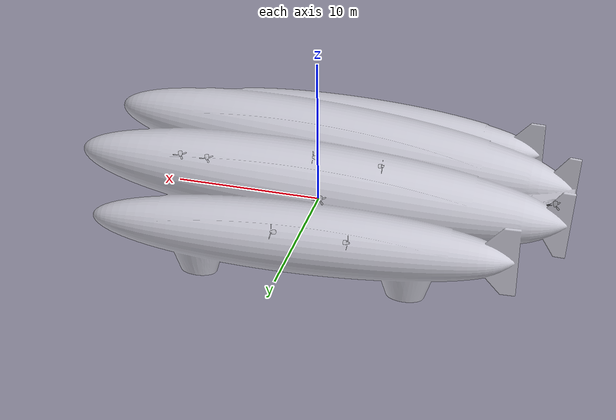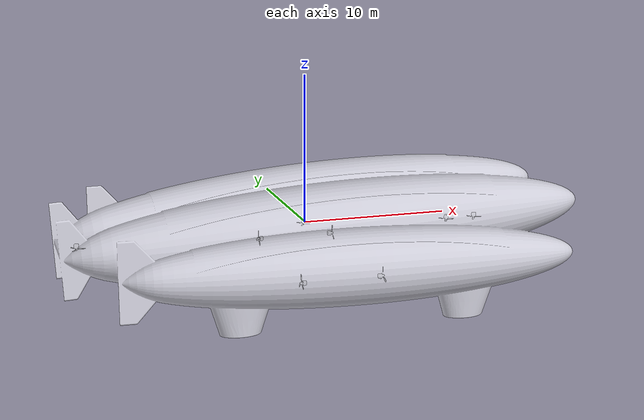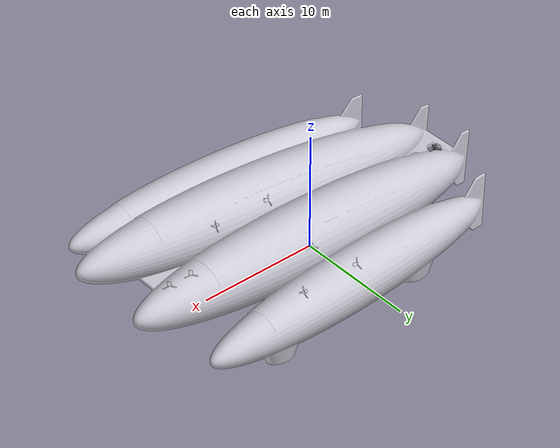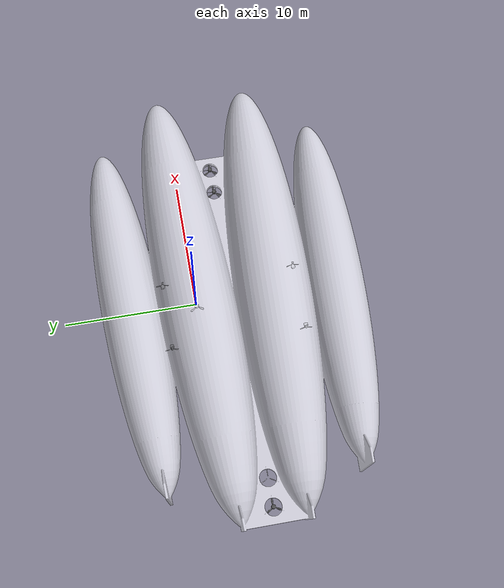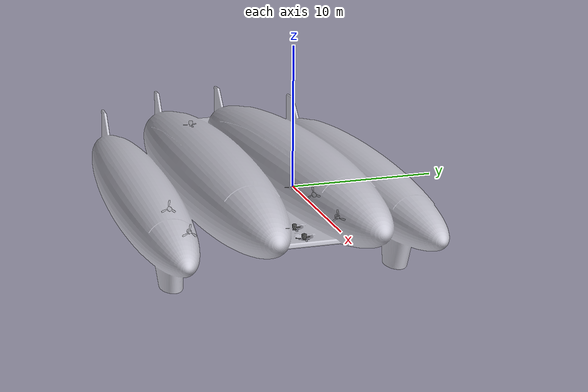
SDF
<?xml version="1.0" encoding="UTF-8"?>
<!-- 备份文件: model_with_servo.sdf                                -->
<!-- 说明: 此文件为旧方案(带舵机)的备份, 保留用于参考和回滚       -->
<!-- 创建日期: 2026-06-23                                        -->
<!-- 旧方案特点:                                                  -->
<!--   - 4个升力电机(0-3)各配备1个倾斜舵机(tilt_joint)           -->
<!--   - 舵机可绕Y轴旋转0-180度, 改变推力方向                    -->
<!--   - 0度=悬停(向上), 90度=朝后, 180度=降落(向下)            -->
<!--   - 所有升力电机推力方向相同, 通过舵机统一控制              -->
<!--   - motorConstant=0.58e-03 (推力80N/个)                     -->
<!-- 新方案(model.sdf)特点:                                      -->
<!--   - 无舵机, 推力方向固定                                    -->
<!--   - M0(前1)/M3(后2): 推力向上, 用于上升, 额定20kg           -->
<!--   - M1(前2)/M2(后1): 推力向下, 用于下降, 额定40kg           -->
<!--   - 俯仰控制: 4个电机都参与差动                             -->
<sdf version='1.10'>
  <model name='lingyun01'>

    <pose>0 0 0 0 0 0</pose>

    <!-- 灵云01号 (Lingyun01) - Gazebo Sim 仿真模型                   -->
    <!-- 总体规格:                                                     -->
    <!--   起飞重量(仿真值): 2206 kg                                   -->
    <!--     (设计起飞重量仍在核算中, 暂以此值保持中性浮力)             -->
    <!--   氦气体积:     1800 m³                                      -->
    <!--   总长(含尾椎): 34.7 m                                        -->
    <!--   总宽:         18.5 m (四气囊组合)                           -->
    <!--   总高:         12.8 m (四气囊垂直堆叠)                       -->
    <!-- 动力系统 (8电机 + 4舵机):                                     -->
    <!--   升力电机x4: 垂直推力 + 可倾斜舵机 (底部安装)               -->
    <!--   推进电机x4: 水平推进+差动偏航 (两侧安装)                    -->
    <!-- 3D模型: 9个独立STL文件 (公司SolidWorks导出)                  -->
    <!-- 坐标系: PX4 FLU标准 (前-左-上, 右手定则)                     -->

    <static>false</static>
    <self_collide>false</self_collide>

    <!-- 飞艇主体Link -->
    <!-- 原点设在SolidWorks装配坐标系原点 (FLU: X=前, Y=左, Z=上) -->
    <link name='base_link'>
      <pose>0 0 0 0 0 0</pose>

      <inertial>
        <pose>-0.012 -2.894 -0.009 0 0 0</pose>
        <mass>2206</mass>
        <inertia>
          <ixx>44700.0</ixx>
          <iyy>112200.0</iyy>
          <izz>145500.0</izz>
          <ixy>0</ixy>
          <ixz>0</ixz>
          <iyz>0</iyz>
        </inertia>
      </inertial>

      <gravity>true</gravity>
      <velocity_decay/>

      <!-- ====== 四气囊主体外观 (lingyun01_hull_all.STL) ====== -->
      <visual name='hull_visual'>
        <pose>0 0 0 0 0 0</pose>
        <geometry>
          <mesh>
            <scale>1 1 1</scale>
            <uri>file:///home/hex/PX4-Autopilot/Tools/simulation/gz/models/lingyun01/meshes/lingyun01_hull_all.STL</uri>
          </mesh>
        </geometry>
        <material>
          <ambient>0.93 0.93 0.95 0.92</ambient>
          <diffuse>0.88 0.88 0.92 0.88</diffuse>
          <specular>0.95 0.95 0.98 0.9</specular>
          <emissive>0.0 0.0 0.0 1</emissive>
        </material>
      </visual>

      <!-- ====== 碰撞体 (mesh精确外形) ====== -->
      <collision name='hull_collision'>
        <pose>0 0 0 0 0 0</pose>
        <geometry>
          <mesh>
            <uri>model://lingyun01/meshes/lingyun01_hull_all.STL</uri>
          </mesh>
        </geometry>
        <surface>
          <contact>
            <ode>
              <min_depth>0.05</min_depth>
              <max_vel>0</max_vel>
            </ode>
          </contact>
          <friction>
            <ode/>
          </friction>
        </surface>
      </collision>

      <!-- ====== 重心可视化 (红色球体) ====== -->
      <visual name='com_visual'>
        <pose>-0.012 -2.894 -0.009 0 0 0</pose>
        <geometry><sphere><radius>0.5</radius></sphere></geometry>
        <material><ambient>1.0 0.0 0.0 1</ambient><diffuse>1.0 0.0 0.0 1</diffuse></material>
        <transparency>0.7</transparency>
      </visual>

      <!-- IMU 传感器 (安装在base_link原点, 与PX4 EKF2假设一致) -->
      <sensor name="imu_sensor" type="imu">
        <always_on>1</always_on>
        <update_rate>250</update_rate>
        <pose>0 0 0 0 0 0</pose>
        <imu>
          <angular_velocity>
            <x><noise type="gaussian"><mean>0.0</mean><stddev>0.0008726646</stddev></noise></x>
            <y><noise type="gaussian"><mean>0.0</mean><stddev>0.0008726646</stddev></noise></y>
            <z><noise type="gaussian"><mean>0.0</mean><stddev>0.0008726646</stddev></noise></z>
          </angular_velocity>
          <linear_acceleration>
            <x><noise type="gaussian"><mean>0.0</mean><stddev>0.00637</stddev></noise></x>
            <y><noise type="gaussian"><mean>0.0</mean><stddev>0.00637</stddev></noise></y>
            <z><noise type="gaussian"><mean>0.0</mean><stddev>0.00686</stddev></noise></z>
          </linear_acceleration>
        </imu>
      </sensor>

      <!-- 磁力计传感器 (安装在base_link原点, 与PX4 EKF2假设一致) -->
      <sensor name="magnetometer_sensor" type="magnetometer">
        <always_on>1</always_on>
        <update_rate>100</update_rate>
        <pose>0 0 0 0 0 0</pose>
        <magnetometer>
          <x><noise type="gaussian"><stddev>0.0001</stddev></noise></x>
          <y><noise type="gaussian"><stddev>0.0001</stddev></noise></y>
          <z><noise type="gaussian"><stddev>0.0001</stddev></noise></z>
        </magnetometer>
      </sensor>

      <!-- 气压计传感器 (安装在base_link原点) -->
      <sensor name="air_pressure_sensor" type="air_pressure">
        <always_on>1</always_on>
        <update_rate>50</update_rate>
        <pose>0 0 0 0 0 0</pose>
        <air_pressure>
          <pressure><noise type="gaussian"><mean>0</mean><stddev>3</stddev></noise></pressure>
        </air_pressure>
      </sensor>

      <!-- GPS 传感器 (安装在base_link原点) -->
      <sensor name="navsat_sensor" type="navsat">
        <always_on>1</always_on>
        <update_rate>30</update_rate>
        <pose>0 0 0 0 0 0</pose>
      </sensor>
    </link>

    <!-- 升力电机 (输出0-3) + 倾斜舵机                                    -->
    <!-- 结构: base_link -> tilt_joint(Y轴旋转) -> tilt_motor link       -->
    <!--        -> rotor_joint(Z轴旋转) -> rotor link (螺旋桨)           -->
    <!-- 倾斜舵机: 绕-Y轴旋转, 控制升力推力方向前后倾斜 -->
    <!--   正角度 = 后倾 = 推力向后偏 = 产生抬头力矩/补偿推进低头 -->
    <!--   负角度 = 前倾 = 推力向前偏 = 产生低头力矩 -->
    <!--   角度范围: 0度 ~ +180度 (0rad ~ +3.14rad) -->
    <!--   0度=悬停(向上), 90度=推力朝后(补偿抬头), 180度=降落(向下) -->
    <!-- 编号规则: 前部=0/1, 后部=2/3                                     -->
    <!-- STL模型: lingyun01_lift_motor_*.STL                              -->

    <!-- 升力电机0: 前部升力电机1 (front1) -->
    <!-- STL使用SW绝对坐标(螺旋桨轴沿X), 需旋转-90°Y使轴朝上Z -->
    <!-- tilt_motor定位joint位置, rotor使用STL绝对坐标+旋转 -->

    <!-- 倾斜支架link: 无STL文件，pose定义joint位置 -->
    <link name='tilt_motor_0'>
      <pose>11.225 -2.894 0.331 0 0 0</pose>
      <gravity>false</gravity>
      <self_collide>false</self_collide>
      <velocity_decay/>
      <inertial>
        <mass>5.0</mass>
        <inertia>
          <ixx>0.1</ixx><ixy>0</ixy><ixz>0</ixz>
          <iyy>0.1</iyy><iyz>0</iyz>
          <izz>0.05</izz>
        </inertia>
      </inertial>
    </link>

    <!-- 倾斜关节: 绕+Y轴旋转, 0度=向上, 90度=朝前, 180度=向下 -->
    <joint name='tilt_0_joint' type='revolute'>      <!-- 关节名称和类型 -->
      <parent>base_link</parent>                     <!-- 父link -->
      <child>tilt_motor_0</child>                    <!-- 子link -->
      <axis>
        <xyz>0 1 0</xyz>                           <!-- 旋转轴方向: +Y=前倾为正角度 -->
        <limit>
          <lower>0</lower>                          <!-- 最小角度 -->
          <upper>3.14</upper>                       <!-- 最大角度 -->
        </limit>
        <dynamics>
          <friction>0</friction>
          <damping>0.1</damping>
          <spring_reference>0</spring_reference>
          <spring_stiffness>0</spring_stiffness>
        </dynamics>
        <use_parent_model_frame>1</use_parent_model_frame>
      </axis>
      <physics>
        <ode>
          <implicit_spring_damper>1</implicit_spring_damper>
        </ode>
      </physics>
    </joint>

    <!-- 螺旋桨link: link pose=tilt_motor位置(物理推力点), visual/collision pose=负偏移(补偿STL绝对坐标) -->
    <link name='rotor_0'>
      <pose>11.225 -2.894 0.331 0 0 0</pose>
      <gravity>false</gravity>
      <self_collide>false</self_collide>
      <velocity_decay/>
      <inertial>
        <mass>1e-8</mass>
        <inertia>
          <ixx>0.0001</ixx><ixy>0</ixy><ixz>0</ixz>
          <iyy>0.0001</iyy><iyz>0</iyz>
          <izz>0.0001</izz>
        </inertia>
      </inertial>
      <visual name='rotor_0_visual'>
        <pose>-11.225 2.894 -0.331 0 0 0</pose>
        <geometry>
          <mesh>
            <scale>1 1 1</scale>
            <uri>file:///home/hex/PX4-Autopilot/Tools/simulation/gz/models/lingyun01/meshes/lingyun01_lift_motor_front1.STL</uri>
          </mesh>
        </geometry>
        <material>
          <script>
            <name>Gazebo/DarkGrey</name>
            <uri>file://media/materials/scripts/gazebo.material</uri>
          </script>
        </material>
      </visual>
      <collision name='rotor_0_collision'>
        <pose>-11.225 2.894 -0.331 0 0 0</pose>
        <geometry><cylinder><radius>0.8</radius><length>0.05</length></cylinder></geometry>
        <surface>
          <contact><ode><min_depth>0.001</min_depth><max_vel>0</max_vel></ode></contact>
          <friction><ode/></friction>
        </surface>
      </collision>
    </link>

    <!-- 螺旋桨旋转关节: parent改为tilt_motor_0 -->
    <joint name='rotor_0_joint' type='revolute'>
      <parent>tilt_motor_0</parent>
      <child>rotor_0</child>
      <axis>
        <xyz>0 0 1</xyz>
        <limit>
          <lower>-1e+16</lower>
          <upper>1e+16</upper>
        </limit>
        <dynamics>
          <spring_reference>0</spring_reference>
          <spring_stiffness>0</spring_stiffness>
        </dynamics>
      </axis>
    </joint>

    <!-- 升力电机1: 前部升力电机2 (front2) -->
    <!-- STL绝对坐标: +9.21, -2.89, +0.33 -->

    <link name='tilt_motor_1'>
      <pose>9.215 -2.894 0.331 0 0 0</pose>
      <gravity>false</gravity>
      <self_collide>false</self_collide>
      <velocity_decay/>
      <inertial>
        <mass>5.0</mass>
        <inertia>
          <ixx>0.1</ixx><ixy>0</ixy><ixz>0</ixz>
          <iyy>0.1</iyy><iyz>0</iyz>
          <izz>0.05</izz>
        </inertia>
      </inertial>
    </link>

    <joint name='tilt_1_joint' type='revolute'>
      <parent>base_link</parent>
      <child>tilt_motor_1</child>
      <axis>
        <xyz>0 1 0</xyz>
        <limit>
          <lower>0</lower>
          <upper>3.14</upper>
        </limit>
        <dynamics>
          <friction>0</friction>
          <damping>0.1</damping>
          <spring_reference>0</spring_reference>
          <spring_stiffness>0</spring_stiffness>
        </dynamics>
        <use_parent_model_frame>1</use_parent_model_frame>
      </axis>
      <physics>
        <ode>
          <implicit_spring_damper>1</implicit_spring_damper>
        </ode>
      </physics>
    </joint>

    <link name='rotor_1'>
      <pose>9.215 -2.894 0.331 0 0 0</pose>
      <gravity>false</gravity>
      <self_collide>false</self_collide>
      <velocity_decay/>
      <inertial>
        <mass>1e-8</mass>
        <inertia>
          <ixx>0.0001</ixx><ixy>0</ixy><ixz>0</ixz>
          <iyy>0.0001</iyy><iyz>0</iyz>
          <izz>0.0001</izz>
        </inertia>
      </inertial>
      <visual name='rotor_1_visual'>
        <pose>-9.215 2.894 -0.331 0 0 0</pose>
        <geometry>
          <mesh>
            <scale>1 1 1</scale>
            <uri>file:///home/hex/PX4-Autopilot/Tools/simulation/gz/models/lingyun01/meshes/lingyun01_lift_motor_front2.STL</uri>
          </mesh>
        </geometry>
        <material>
          <script>
            <name>Gazebo/DarkGrey</name>
            <uri>file://media/materials/scripts/gazebo.material</uri>
          </script>
        </material>
      </visual>
      <collision name='rotor_1_collision'>
        <pose>-9.215 2.894 -0.331 0 0 0</pose>
        <geometry><cylinder><radius>0.8</radius><length>0.05</length></cylinder></geometry>
        <surface>
          <contact><ode><min_depth>0.001</min_depth><max_vel>0</max_vel></ode></contact>
          <friction><ode/></friction>
        </surface>
      </collision>
    </link>

    <joint name='rotor_1_joint' type='revolute'>
      <parent>tilt_motor_1</parent>
      <child>rotor_1</child>
      <axis>
        <xyz>0 0 1</xyz>
        <limit>
          <lower>-1e+16</lower>
          <upper>1e+16</upper>
        </limit>
        <dynamics>
          <spring_reference>0</spring_reference>
          <spring_stiffness>0</spring_stiffness>
        </dynamics>
      </axis>
    </joint>

    <!-- 升力电机2: 后部升力电机1 (back1) -->
    <!-- STL绝对坐标: -13.54, -2.89, +0.33 -->

    <link name='tilt_motor_2'>
      <pose>-13.535 -2.894 0.331 0 0 0</pose>
      <gravity>false</gravity>
      <self_collide>false</self_collide>
      <velocity_decay/>
      <inertial>
        <mass>5.0</mass>
        <inertia>
          <ixx>0.1</ixx><ixy>0</ixy><ixz>0</ixz>
          <iyy>0.1</iyy><iyz>0</iyz>
          <izz>0.05</izz>
        </inertia>
      </inertial>
    </link>

    <joint name='tilt_2_joint' type='revolute'>
      <parent>base_link</parent>
      <child>tilt_motor_2</child>
      <axis>
        <xyz>0 1 0</xyz>
        <limit>
          <lower>0</lower>
          <upper>3.14</upper>
        </limit>
        <dynamics>
          <friction>0</friction>
          <damping>0.1</damping>
          <spring_reference>0</spring_reference>
          <spring_stiffness>0</spring_stiffness>
        </dynamics>
        <use_parent_model_frame>1</use_parent_model_frame>
      </axis>
      <physics>
        <ode>
          <implicit_spring_damper>1</implicit_spring_damper>
        </ode>
      </physics>
    </joint>

    <link name='rotor_2'>
      <pose>-13.535 -2.894 0.331 0 0 0</pose>
      <gravity>false</gravity>
      <self_collide>false</self_collide>
      <velocity_decay/>
      <inertial>
        <mass>1e-8</mass>
        <inertia>
          <ixx>0.0001</ixx><ixy>0</ixy><ixz>0</ixz>
          <iyy>0.0001</iyy><iyz>0</iyz>
          <izz>0.0001</izz>
        </inertia>
      </inertial>
      <visual name='rotor_2_visual'>
        <pose>13.535 2.894 -0.331 0 0 0</pose>
        <geometry>
          <mesh>
            <scale>1 1 1</scale>
            <uri>file:///home/hex/PX4-Autopilot/Tools/simulation/gz/models/lingyun01/meshes/lingyun01_lift_motor_back1.STL</uri>
          </mesh>
        </geometry>
        <material>
          <script>
            <name>Gazebo/DarkGrey</name>
            <uri>file://media/materials/scripts/gazebo.material</uri>
          </script>
        </material>
      </visual>
      <collision name='rotor_2_collision'>
        <pose>13.535 2.894 -0.331 0 0 0</pose>
        <geometry><cylinder><radius>0.8</radius><length>0.05</length></cylinder></geometry>
        <surface>
          <contact><ode><min_depth>0.001</min_depth><max_vel>0</max_vel></ode></contact>
          <friction><ode/></friction>
        </surface>
      </collision>
    </link>

    <joint name='rotor_2_joint' type='revolute'>
      <parent>tilt_motor_2</parent>
      <child>rotor_2</child>
      <axis>
        <xyz>0 0 1</xyz>
        <limit>
          <lower>-1e+16</lower>
          <upper>1e+16</upper>
        </limit>
        <dynamics>
          <spring_reference>0</spring_reference>
          <spring_stiffness>0</spring_stiffness>
        </dynamics>
      </axis>
    </joint>

    <!-- 升力电机3: 后部升力电机2 (back2) -->
    <!-- STL绝对坐标: -15.53, -2.89, +0.33 -->

    <link name='tilt_motor_3'>
      <pose>-15.525 -2.894 0.331 0 0 0</pose>
      <gravity>false</gravity>
      <self_collide>false</self_collide>
      <velocity_decay/>
      <inertial>
        <mass>5.0</mass>
        <inertia>
          <ixx>0.1</ixx><ixy>0</ixy><ixz>0</ixz>
          <iyy>0.1</iyy><iyz>0</iyz>
          <izz>0.05</izz>
        </inertia>
      </inertial>
    </link>

    <joint name='tilt_3_joint' type='revolute'>
      <parent>base_link</parent>
      <child>tilt_motor_3</child>
      <axis>
        <xyz>0 1 0</xyz>
        <limit>
          <lower>0</lower>
          <upper>3.14</upper>
        </limit>
        <dynamics>
          <friction>0</friction>
          <damping>0.1</damping>
          <spring_reference>0</spring_reference>
          <spring_stiffness>0</spring_stiffness>
        </dynamics>
        <use_parent_model_frame>1</use_parent_model_frame>
      </axis>
      <physics>
        <ode>
          <implicit_spring_damper>1</implicit_spring_damper>
        </ode>
      </physics>
    </joint>

    <link name='rotor_3'>
      <pose>-15.525 -2.894 0.331 0 0 0</pose>
      <gravity>false</gravity>
      <self_collide>false</self_collide>
      <velocity_decay/>
      <inertial>
        <mass>1e-8</mass>
        <inertia>
          <ixx>0.0001</ixx><ixy>0</ixy><ixz>0</ixz>
          <iyy>0.0001</iyy><iyz>0</iyz>
          <izz>0.0001</izz>
        </inertia>
      </inertial>
      <visual name='rotor_3_visual'>
        <pose>15.525 2.894 -0.331 0 0 0</pose>
        <geometry>
          <mesh>
            <scale>1 1 1</scale>
            <uri>file:///home/hex/PX4-Autopilot/Tools/simulation/gz/models/lingyun01/meshes/lingyun01_lift_motor_back2.STL</uri>
          </mesh>
        </geometry>
        <material>
          <script>
            <name>Gazebo/DarkGrey</name>
            <uri>file://media/materials/scripts/gazebo.material</uri>
          </script>
        </material>
      </visual>
      <collision name='rotor_3_collision'>
        <pose>15.525 2.894 -0.331 0 0 0</pose>
        <geometry><cylinder><radius>0.8</radius><length>0.05</length></cylinder></geometry>
        <surface>
          <contact><ode><min_depth>0.001</min_depth><max_vel>0</max_vel></ode></contact>
          <friction><ode/></friction>
        </surface>
      </collision>
    </link>

    <joint name='rotor_3_joint' type='revolute'>
      <parent>tilt_motor_3</parent>
      <child>rotor_3</child>
      <axis>
        <xyz>0 0 1</xyz>
        <limit>
          <lower>-1e+16</lower>
          <upper>1e+16</upper>
        </limit>
        <dynamics>
          <spring_reference>0</spring_reference>
          <spring_stiffness>0</spring_stiffness>
        </dynamics>
      </axis>
    </joint>

    <!-- 推进电机 (输出4-7)                 -->
    <!-- 安装位置: 飞艇下部               -->
    <!-- 功能: 水平推进+差动偏航 (X轴方向) -->
    <!-- STL模型: lingyun01_thrust_motor_*.STL -->
    <!-- 注意: 推进电机link旋转90度绕Y轴, 使Z轴指向前方(X轴), 推力沿Z轴施加即向前 -->

    <!-- 推进电机0: 左前推进电机 (LF) [STL绝对坐标: +2.55, +2.39, -1.51] -->
    <!-- link pose绕Y轴+90度: 使link局部Z轴指向base_link +X方向(推力向前) -->
    <!-- visual/collision pose: 补偿link旋转, 使mesh在世界坐标系中位置正确 -->
    <link name='rotor_4'>
      <pose>2.55 2.39 -1.51 0 1.5708 0</pose>
      <gravity>false</gravity>
      <self_collide>false</self_collide>
      <velocity_decay/>
      <inertial>
        <mass>1e-8</mass>
        <inertia>
          <ixx>0.0001</ixx><ixy>0</ixy><ixz>0</ixz>
          <iyy>0.0001</iyy><iyz>0</iyz>
          <izz>0.0001</izz>
        </inertia>
      </inertial>
      <visual name='rotor_4_visual'>
        <pose>-1.51 -2.39 -2.55 0 -1.5708 0</pose>
        <geometry>
          <mesh>
            <scale>1 1 1</scale>
            <uri>file:///home/hex/PX4-Autopilot/Tools/simulation/gz/models/lingyun01/meshes/lingyun01_thrust_motor_LF.STL</uri>
          </mesh>
        </geometry>
        <material>
          <script>
            <name>Gazebo/DarkGrey</name>
            <uri>file://media/materials/scripts/gazebo.material</uri>
          </script>
        </material>
      </visual>
      <collision name='rotor_4_collision'>
        <pose>-1.51 -2.39 -2.55 0 -1.5708 0</pose>
        <geometry><cylinder><radius>1.0</radius><length>0.08</length></cylinder></geometry>
        <surface>
          <contact><ode><min_depth>0.001</min_depth><max_vel>0</max_vel></ode></contact>
          <friction><ode/></friction>
        </surface>
      </collision>
    </link>
    <joint name='rotor_4_joint' type='revolute'>
      <parent>base_link</parent>
      <child>rotor_4</child>
      <axis>
        <xyz>0 0 1</xyz>
        <limit>
          <lower>-1e+16</lower>
          <upper>1e+16</upper>
        </limit>
        <dynamics>
          <spring_reference>0</spring_reference>
          <spring_stiffness>0</spring_stiffness>
        </dynamics>
      </axis>
    </joint>

    <!-- 推进电机1: 左后推进电机 (LB) [STL绝对坐标: -2.55, +2.39, -1.51] -->
    <link name='rotor_5'>
      <pose>-2.55 2.39 -1.51 0 1.5708 0</pose>
      <gravity>false</gravity>
      <self_collide>false</self_collide>
      <velocity_decay/>
      <inertial>
        <mass>1e-8</mass>
        <inertia>
          <ixx>0.0001</ixx><ixy>0</ixy><ixz>0</ixz>
          <iyy>0.0001</iyy><iyz>0</iyz>
          <izz>0.0001</izz>
        </inertia>
      </inertial>
      <visual name='rotor_5_visual'>
        <pose>-1.51 -2.39 2.55 0 -1.5708 0</pose>
        <geometry>
          <mesh>
            <scale>1 1 1</scale>
            <uri>file:///home/hex/PX4-Autopilot/Tools/simulation/gz/models/lingyun01/meshes/lingyun01_thrust_motor_LB.STL</uri>
          </mesh>
        </geometry>
        <material>
          <script>
            <name>Gazebo/DarkGrey</name>
            <uri>file://media/materials/scripts/gazebo.material</uri>
          </script>
        </material>
      </visual>
      <collision name='rotor_5_collision'>
        <pose>-1.51 -2.39 2.55 0 -1.5708 0</pose>
        <geometry><cylinder><radius>1.0</radius><length>0.08</length></cylinder></geometry>
        <surface>
          <contact><ode><min_depth>0.001</min_depth><max_vel>0</max_vel></ode></contact>
          <friction><ode/></friction>
        </surface>
      </collision>
    </link>
    <joint name='rotor_5_joint' type='revolute'>
      <parent>base_link</parent>
      <child>rotor_5</child>
      <axis>
        <xyz>0 0 1</xyz>
        <limit>
          <lower>-1e+16</lower>
          <upper>1e+16</upper>
        </limit>
        <dynamics>
          <spring_reference>0</spring_reference>
          <spring_stiffness>0</spring_stiffness>
        </dynamics>
      </axis>
    </joint>

    <!-- 推进电机2: 右前推进电机 (RF) [STL绝对坐标: +2.55, -8.19, -1.51] -->
    <link name='rotor_6'>
      <pose>2.55 -8.19 -1.51 0 1.5708 0</pose>
      <gravity>false</gravity>
      <self_collide>false</self_collide>
      <velocity_decay/>
      <inertial>
        <mass>1e-8</mass>
        <inertia>
          <ixx>0.0001</ixx><ixy>0</ixy><ixz>0</ixz>
          <iyy>0.0001</iyy><iyz>0</iyz>
          <izz>0.0001</izz>
        </inertia>
      </inertial>
      <visual name='rotor_6_visual'>
        <pose>-1.51 8.19 -2.55 0 -1.5708 0</pose>
        <geometry>
          <mesh>
            <scale>1 1 1</scale>
            <uri>file:///home/hex/PX4-Autopilot/Tools/simulation/gz/models/lingyun01/meshes/lingyun01_thrust_motor_RF.STL</uri>
          </mesh>
        </geometry>
        <material>
          <script>
            <name>Gazebo/DarkGrey</name>
            <uri>file://media/materials/scripts/gazebo.material</uri>
          </script>
        </material>
      </visual>
      <collision name='rotor_6_collision'>
        <pose>-1.51 8.19 -2.55 0 -1.5708 0</pose>
        <geometry><cylinder><radius>1.0</radius><length>0.08</length></cylinder></geometry>
        <surface>
          <contact><ode><min_depth>0.001</min_depth><max_vel>0</max_vel></ode></contact>
          <friction><ode/></friction>
        </surface>
      </collision>
    </link>
    <joint name='rotor_6_joint' type='revolute'>
      <parent>base_link</parent>
      <child>rotor_6</child>
      <axis>
        <xyz>0 0 1</xyz>
        <limit>
          <lower>-1e+16</lower>
          <upper>1e+16</upper>
        </limit>
        <dynamics>
          <spring_reference>0</spring_reference>
          <spring_stiffness>0</spring_stiffness>
        </dynamics>
      </axis>
    </joint>

    <!-- 推进电机3: 右后推进电机 (RB) [STL绝对坐标: -2.55, -8.19, -1.51] -->
    <link name='rotor_7'>
      <pose>-2.55 -8.19 -1.51 0 1.5708 0</pose>
      <gravity>false</gravity>
      <self_collide>false</self_collide>
      <velocity_decay/>
      <inertial>
        <mass>1e-8</mass>
        <inertia>
          <ixx>0.0001</ixx><ixy>0</ixy><ixz>0</ixz>
          <iyy>0.0001</iyy><iyz>0</iyz>
          <izz>0.0001</izz>
        </inertia>
      </inertial>
      <visual name='rotor_7_visual'>
        <pose>-1.51 8.19 2.55 0 -1.5708 0</pose>
        <geometry>
          <mesh>
            <scale>1 1 1</scale>
            <uri>file:///home/hex/PX4-Autopilot/Tools/simulation/gz/models/lingyun01/meshes/lingyun01_thrust_motor_RB.STL</uri>
          </mesh>
        </geometry>
        <material>
          <script>
            <name>Gazebo/DarkGrey</name>
            <uri>file://media/materials/scripts/gazebo.material</uri>
          </script>
        </material>
      </visual>
      <collision name='rotor_7_collision'>
        <pose>-1.51 8.19 2.55 0 -1.5708 0</pose>
        <geometry><cylinder><radius>1.0</radius><length>0.08</length></cylinder></geometry>
        <surface>
          <contact><ode><min_depth>0.001</min_depth><max_vel>0</max_vel></ode></contact>
          <friction><ode/></friction>
        </surface>
      </collision>
    </link>
    <joint name='rotor_7_joint' type='revolute'>
      <parent>base_link</parent>
      <child>rotor_7</child>
      <axis>
        <xyz>0 0 1</xyz>
        <limit>
          <lower>-1e+16</lower>
          <upper>1e+16</upper>
        </limit>
        <dynamics>
          <spring_reference>0</spring_reference>
          <spring_stiffness>0</spring_stiffness>
        </dynamics>
      </axis>
    </joint>

    <!-- 电机插件配置       -->

    <!-- 升力电机插件 (0-3): 垂直推力 (Z轴) -->
    <!-- motorConstant=0.58e-03, F_max = 0.58e-03 * 372^2 = 80N/个, 4个合计320N -->
    <plugin filename="gz-sim-multicopter-motor-model-system" name="gz::sim::systems::MulticopterMotorModel">
      <jointName>rotor_0_joint</jointName>
      <linkName>rotor_0</linkName>
      <turningDirection>ccw</turningDirection>
      <timeConstantUp>0.2</timeConstantUp>
      <timeConstantDown>0.3</timeConstantDown>
      <maxRotVelocity>372.0</maxRotVelocity>
      <motorConstant>0.58e-03</motorConstant>
      <momentConstant>0.002</momentConstant>
      <commandSubTopic>command/motor_speed</commandSubTopic>
      <motorNumber>0</motorNumber>
      <rotorDragCoefficient>8.06428e-03</rotorDragCoefficient>
      <rollingMomentCoefficient>1e-05</rollingMomentCoefficient>
      <rotorVelocitySlowdownSim>10</rotorVelocitySlowdownSim>
      <motorType>velocity</motorType>
    </plugin>

    <plugin filename="gz-sim-multicopter-motor-model-system" name="gz::sim::systems::MulticopterMotorModel">
      <jointName>rotor_1_joint</jointName>
      <linkName>rotor_1</linkName>
      <turningDirection>cw</turningDirection>
      <timeConstantUp>0.2</timeConstantUp>
      <timeConstantDown>0.3</timeConstantDown>
      <maxRotVelocity>372.0</maxRotVelocity>
      <motorConstant>0.58e-03</motorConstant>
      <momentConstant>0.002</momentConstant>
      <commandSubTopic>command/motor_speed</commandSubTopic>
      <motorNumber>1</motorNumber>
      <rotorDragCoefficient>8.06428e-03</rotorDragCoefficient>
      <rollingMomentCoefficient>1e-05</rollingMomentCoefficient>
      <rotorVelocitySlowdownSim>10</rotorVelocitySlowdownSim>
      <motorType>velocity</motorType>
    </plugin>

    <plugin filename="gz-sim-multicopter-motor-model-system" name="gz::sim::systems::MulticopterMotorModel">
      <jointName>rotor_2_joint</jointName>
      <linkName>rotor_2</linkName>
      <turningDirection>cw</turningDirection>
      <timeConstantUp>0.2</timeConstantUp>
      <timeConstantDown>0.3</timeConstantDown>
      <maxRotVelocity>372.0</maxRotVelocity>
      <motorConstant>0.58e-03</motorConstant>
      <momentConstant>0.002</momentConstant>
      <commandSubTopic>command/motor_speed</commandSubTopic>
      <motorNumber>2</motorNumber>
      <rotorDragCoefficient>8.06428e-03</rotorDragCoefficient>
      <rollingMomentCoefficient>1e-05</rollingMomentCoefficient>
      <rotorVelocitySlowdownSim>10</rotorVelocitySlowdownSim>
      <motorType>velocity</motorType>
    </plugin>

    <plugin filename="gz-sim-multicopter-motor-model-system" name="gz::sim::systems::MulticopterMotorModel">
      <jointName>rotor_3_joint</jointName>
      <linkName>rotor_3</linkName>
      <turningDirection>ccw</turningDirection>
      <timeConstantUp>0.2</timeConstantUp>
      <timeConstantDown>0.3</timeConstantDown>
      <maxRotVelocity>372.0</maxRotVelocity>
      <motorConstant>0.58e-03</motorConstant>
      <momentConstant>0.002</momentConstant>
      <commandSubTopic>command/motor_speed</commandSubTopic>
      <motorNumber>3</motorNumber>
      <rotorDragCoefficient>8.06428e-03</rotorDragCoefficient>
      <rollingMomentCoefficient>1e-05</rollingMomentCoefficient>
      <rotorVelocitySlowdownSim>10</rotorVelocitySlowdownSim>
      <motorType>velocity</motorType>
    </plugin>

    <!-- 推进电机插件 (4-7): 水平推进+偏航 -->
    <!-- 反扭矩对称方案(前后对称): 前部ccw, 后部cw -->
    <!-- 推进电机旋转轴沿X轴(Roll轴), 反扭矩产生Roll力矩 -->
    <!-- 前部两个ccw: 反扭矩+Roll; 后部两个cw: 反扭矩-Roll; 4电机同速时抵消 -->
    <!-- 偏航差动时: 同侧前后反扭矩方向相反, 也抵消 -->
    <!-- motorConstant>0: 推力沿局部Z轴=全局X轴(向前), 4电机推力都向前 -->
    <plugin filename="gz-sim-multicopter-motor-model-system" name="gz::sim::systems::MulticopterMotorModel">
      <jointName>rotor_4_joint</jointName>
      <linkName>rotor_4</linkName>
      <turningDirection>ccw</turningDirection>
      <timeConstantUp>0.15</timeConstantUp>
      <timeConstantDown>0.2</timeConstantDown>
      <maxRotVelocity>394.8</maxRotVelocity>
      <motorConstant>4.66e-03</motorConstant>
      <momentConstant>0.02</momentConstant>
      <commandSubTopic>command/motor_speed</commandSubTopic>
      <motorNumber>4</motorNumber>
      <rotorDragCoefficient>8.06428e-03</rotorDragCoefficient>
      <rollingMomentCoefficient>0</rollingMomentCoefficient>
      <rotorVelocitySlowdownSim>10</rotorVelocitySlowdownSim>
      <motorType>velocity</motorType>
    </plugin>

    <plugin filename="gz-sim-multicopter-motor-model-system" name="gz::sim::systems::MulticopterMotorModel">
      <jointName>rotor_5_joint</jointName>
      <linkName>rotor_5</linkName>
      <turningDirection>cw</turningDirection>
      <timeConstantUp>0.15</timeConstantUp>
      <timeConstantDown>0.2</timeConstantDown>
      <maxRotVelocity>394.8</maxRotVelocity>
      <motorConstant>4.66e-03</motorConstant>
      <momentConstant>0.02</momentConstant>
      <commandSubTopic>command/motor_speed</commandSubTopic>
      <motorNumber>5</motorNumber>
      <rotorDragCoefficient>8.06428e-03</rotorDragCoefficient>
      <rollingMomentCoefficient>0</rollingMomentCoefficient>
      <rotorVelocitySlowdownSim>10</rotorVelocitySlowdownSim>
      <motorType>velocity</motorType>
    </plugin>

    <plugin filename="gz-sim-multicopter-motor-model-system" name="gz::sim::systems::MulticopterMotorModel">
      <jointName>rotor_6_joint</jointName>
      <linkName>rotor_6</linkName>
      <turningDirection>ccw</turningDirection>
      <timeConstantUp>0.15</timeConstantUp>
      <timeConstantDown>0.2</timeConstantDown>
      <maxRotVelocity>394.8</maxRotVelocity>
      <motorConstant>4.66e-03</motorConstant>
      <momentConstant>0.02</momentConstant>
      <commandSubTopic>command/motor_speed</commandSubTopic>
      <motorNumber>6</motorNumber>
      <rotorDragCoefficient>8.06428e-03</rotorDragCoefficient>
      <rollingMomentCoefficient>0</rollingMomentCoefficient>
      <rotorVelocitySlowdownSim>10</rotorVelocitySlowdownSim>
      <motorType>velocity</motorType>
    </plugin>

    <plugin filename="gz-sim-multicopter-motor-model-system" name="gz::sim::systems::MulticopterMotorModel">
      <jointName>rotor_7_joint</jointName>
      <linkName>rotor_7</linkName>
      <turningDirection>cw</turningDirection>
      <timeConstantUp>0.15</timeConstantUp>
      <timeConstantDown>0.2</timeConstantDown>
      <maxRotVelocity>394.8</maxRotVelocity>
      <motorConstant>4.66e-03</motorConstant>
      <momentConstant>0.02</momentConstant>
      <commandSubTopic>command/motor_speed</commandSubTopic>
      <motorNumber>7</motorNumber>
      <rotorDragCoefficient>8.06428e-03</rotorDragCoefficient>
      <rollingMomentCoefficient>0</rollingMomentCoefficient>
      <rotorVelocitySlowdownSim>10</rotorVelocitySlowdownSim>
      <motorType>velocity</motorType>
    </plugin>

    <!-- 倾斜舵机插件 (0-3): 控制升力电机推力方向 -->
    <!-- 订阅servo_0~3话题, 驱动tilt_0~3_joint到目标角度 -->
    <!-- 角度范围: -10度 ~ +180度, 0度=向上, 90度=朝后, 180度=向下 -->
    <plugin filename="gz-sim-joint-position-controller-system"
      name="gz::sim::systems::JointPositionController">
      <joint_name>tilt_0_joint</joint_name>
      <sub_topic>servo_0</sub_topic>
      <p_gain>100</p_gain>
      <i_gain>0</i_gain>
      <d_gain>10</d_gain>
      <i_max>0</i_max>
      <i_min>0</i_min>
      <cmd_max>10</cmd_max>
      <cmd_min>-10</cmd_min>
    </plugin>

    <plugin filename="gz-sim-joint-position-controller-system"
      name="gz::sim::systems::JointPositionController">
      <joint_name>tilt_1_joint</joint_name>
      <sub_topic>servo_1</sub_topic>
      <p_gain>100</p_gain>
      <i_gain>0</i_gain>
      <d_gain>10</d_gain>
      <i_max>0</i_max>
      <i_min>0</i_min>
      <cmd_max>10</cmd_max>
      <cmd_min>-10</cmd_min>
    </plugin>

    <plugin filename="gz-sim-joint-position-controller-system"
      name="gz::sim::systems::JointPositionController">
      <joint_name>tilt_2_joint</joint_name>
      <sub_topic>servo_2</sub_topic>
      <p_gain>100</p_gain>
      <i_gain>0</i_gain>
      <d_gain>10</d_gain>
      <i_max>0</i_max>
      <i_min>0</i_min>
      <cmd_max>10</cmd_max>
      <cmd_min>-10</cmd_min>
    </plugin>

    <plugin filename="gz-sim-joint-position-controller-system"
      name="gz::sim::systems::JointPositionController">
      <joint_name>tilt_3_joint</joint_name>
      <sub_topic>servo_3</sub_topic>
      <p_gain>100</p_gain>
      <i_gain>0</i_gain>
      <d_gain>10</d_gain>
      <i_max>0</i_max>
      <i_min>0</i_min>
      <cmd_max>10</cmd_max>
      <cmd_min>-10</cmd_min>
    </plugin>

    <!-- 飞艇气动力插件       -->
    <plugin filename="/home/hex/PX4-Autopilot/Tools/simulation/gz/plugins/airship_dynamics/build/libAirshipDynamics.so" name="gz::sim::systems::AirshipDynamics">
      <link_name>base_link</link_name>
      <air_density>1.225</air_density>
      <hull_volume>1800.0</hull_volume>
      <net_buoyancy>0</net_buoyancy>
      <buoyancy_offset>-0.012 -2.894 -0.009</buoyancy_offset>
      <buoyancy_center>-0.012 -2.894 -0.009</buoyancy_center>
      <force_inviscid_coeff>5.0</force_inviscid_coeff>
      <force_viscous_coeff>270.0</force_viscous_coeff>
      <moment_inviscid_coeff>400.0</moment_inviscid_coeff>
      <moment_viscous_coeff>200.0</moment_viscous_coeff>
      <eps_v>0.5</eps_v>
      <axial_drag_coeff>3.0</axial_drag_coeff>
      <dist_cov>0.0</dist_cov>
      <tether_stiffness>0</tether_stiffness>
      <tether_damping>0</tether_damping>
      <tether_anchor>-0.012 -2.894 0</tether_anchor>
      <m11>187</m11>
      <m22>1496</m22>
      <m33>787</m33>
      <m44>5000</m44>
      <m55>5000</m55>
      <m66>5000</m66>
      <!-- 旋转阻尼系数 (N·m·s/rad) - 基于等效椭球体模型计算 -->
      <!-- 飞艇等效椭球体: a=17.35m, b=9.25m, c=6.4m, V=1800m³ -->
      <!-- 公式: C_rot = 0.5 × ρ × V^(2/3) × L² × C_l_rot -->
      <!-- X轴(Roll): L=12.8m, C_l_rot=0.10, 基础值14840, 四气囊修正×3.0=45000 -->
      <rot_damping_x>45000</rot_damping_x>
      <!-- Y轴(Pitch): L=34.7m, C_l_rot=0.20, 计算值216631≈220000 -->
      <rot_damping_y>220000</rot_damping_y>
      <!-- Z轴(Yaw): L=18.5m, C_l_rot=0.15, 基础值46378, 四气囊修正×3.0=140000 -->
      <rot_damping_z>140000</rot_damping_z>
    </plugin>

    <plugin filename="gz-sim-joint-state-publisher-system" name="gz::sim::systems::JointStatePublisher">
      <topic>/model/lingyun01/joint_state</topic>
    </plugin>

  </model>
</sdf>
